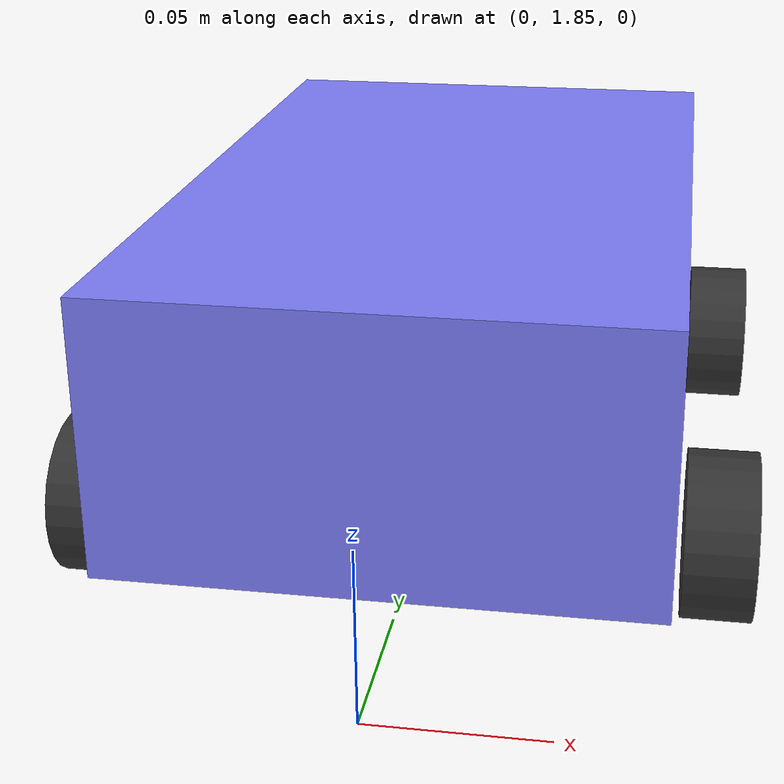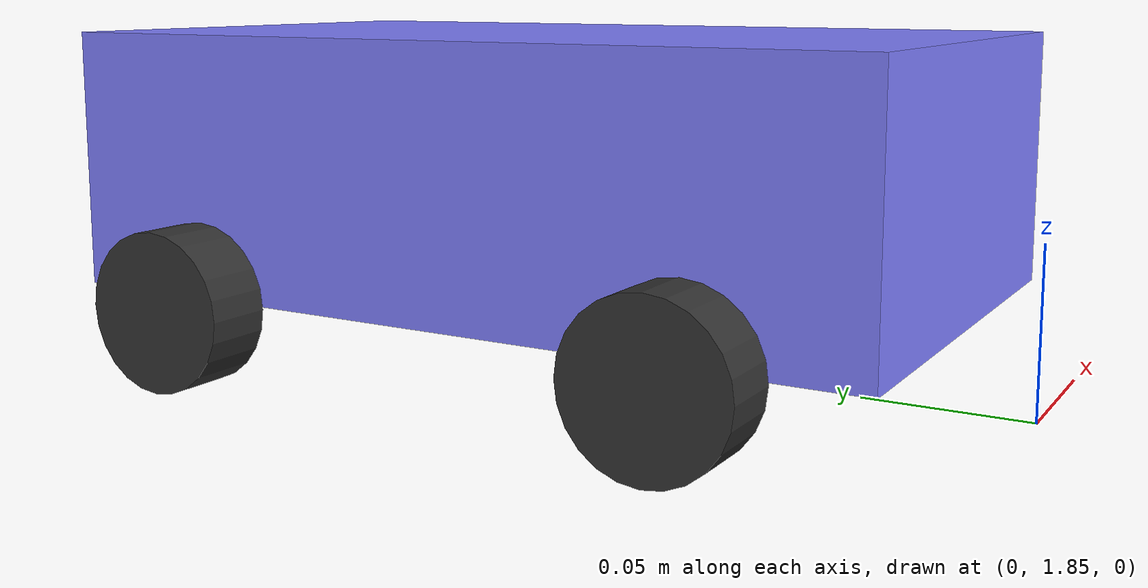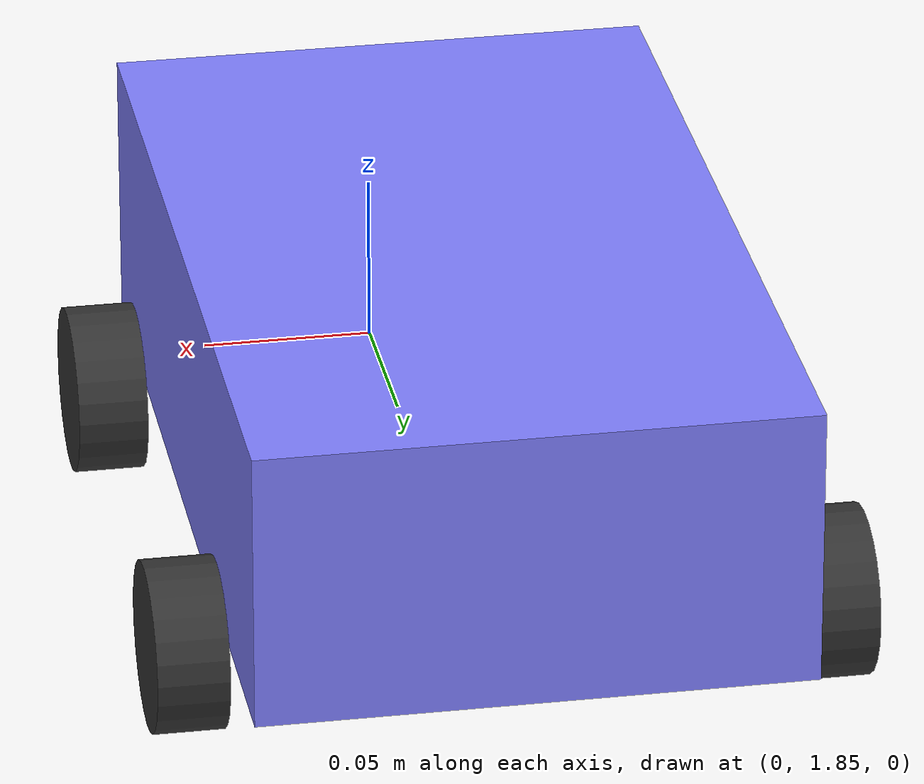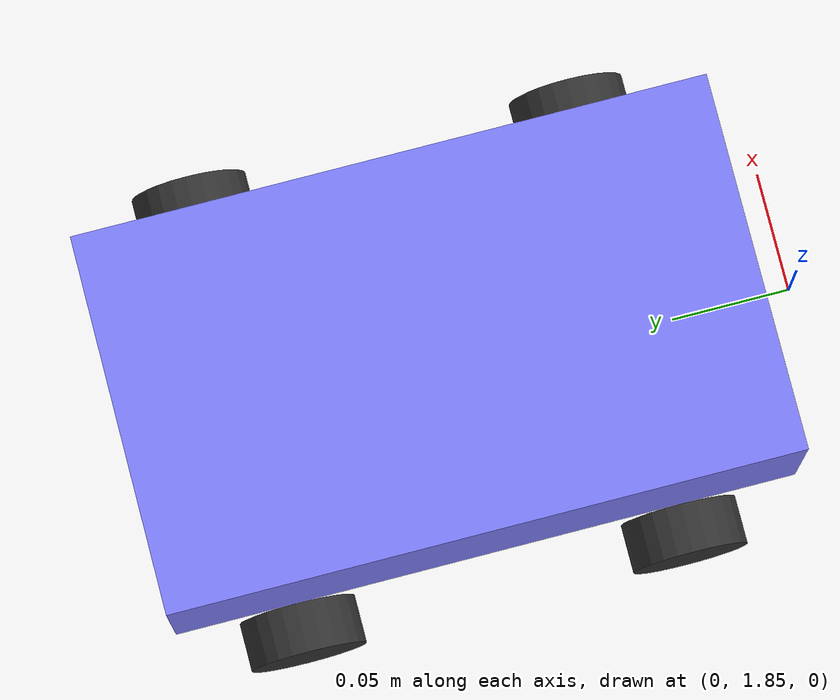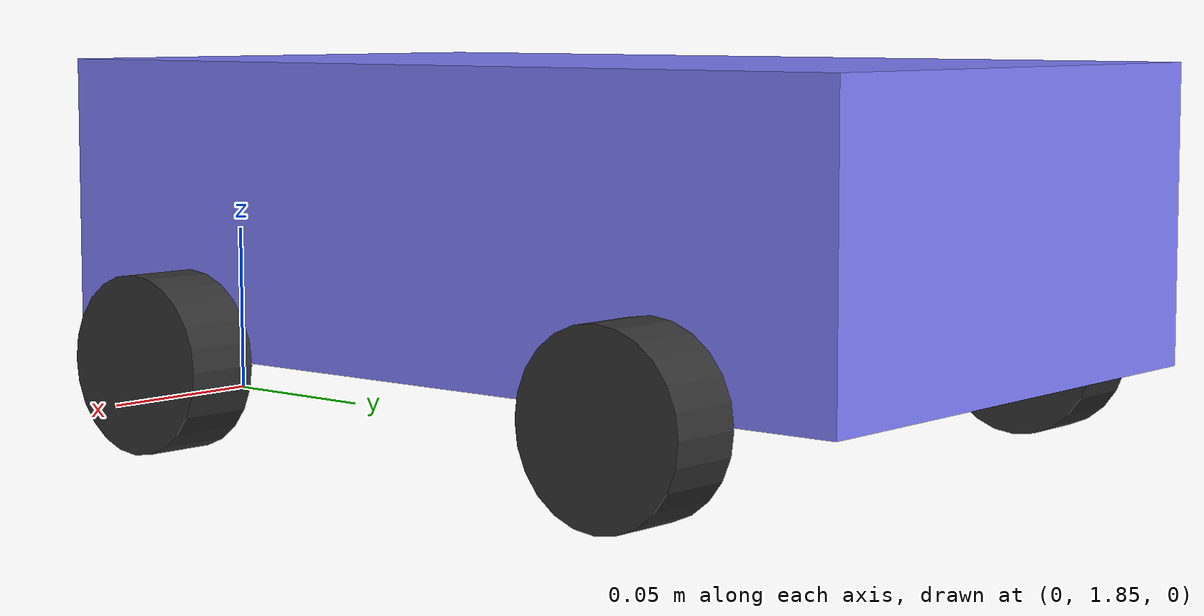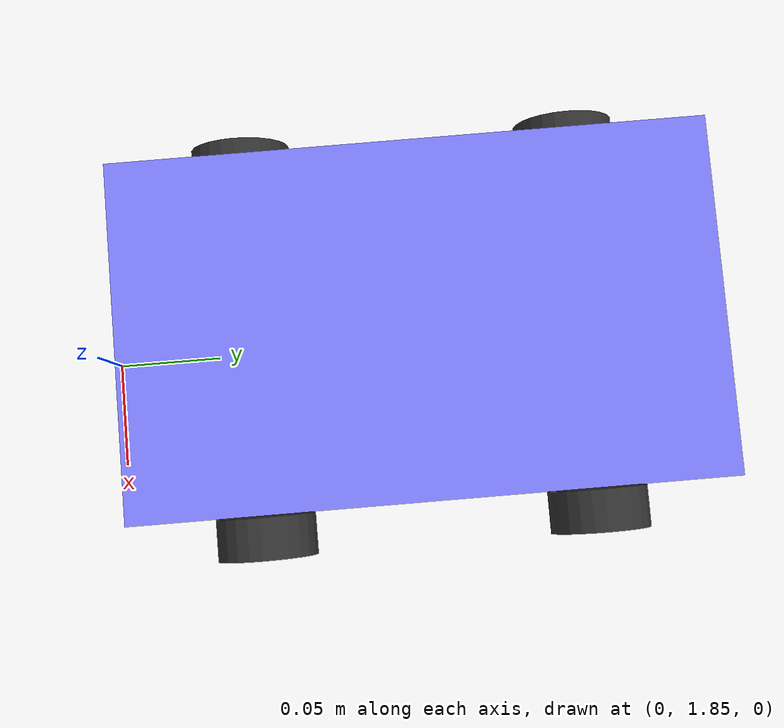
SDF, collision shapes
<?xml version="1.0" ?>
<sdf version="1.10">
  <model name='robot_ROBOT_ID' xmlns:gz="http://gazebosim.org/schema">

    <pose>0 2 0.024 0 0 1.5708</pose>
    <self_collide>false</self_collide>

    <!-- ===== Lidar frame ===== -->
    <frame name="lidar_link" attached_to="chassis">
      <pose>0.08 0 0.06 0 0 0</pose>
    </frame>

    <link name='chassis'>
      <pose>0 0 0.04 0 0 0</pose>
      <gravity>true</gravity>

      <inertial>
        <mass>1.5</mass>
        <inertia>
          <ixx>0.003278125</ixx><ixy>0</ixy><ixz>0</ixz>
          <iyy>0.009380</iyy>   <iyz>0</iyz>
          <izz>0.012153125</izz>
        </inertia>
      </inertial>

      <!-- COLLISION chassis — đã khôi phục -->
      <collision name="collision">
        <geometry>
          <box><size>0.26 0.155 0.08</size></box>
        </geometry>
        <surface>
          <friction>
            <ode>
              <mu>0.6</mu>
              <mu2>0.6</mu2>
            </ode>
          </friction>
          <contact>
            <ode>
              <kp>1e6</kp>
              <kd>100.0</kd>
              <max_vel>0.1</max_vel>
              <min_depth>0.001</min_depth>
            </ode>
          </contact>
        </surface>
      </collision>

      <visual name='visual'>
        <geometry>
          <box><size>0.26 0.155 0.08</size></box>
        </geometry>
        <material>
          <ambient>0.5 0.5 1.0 1</ambient>
          <diffuse>0.5 0.5 1.0 1</diffuse>
          <specular>0.0 0.0 1.0 1</specular>
        </material>
      </visual>

      <!-- ===== 3D block letters HUY ===== -->
      <visual name="txt_H_left">
        <pose>0.036193 0.08029 0.007033 0 0 0</pose>
        <geometry><box><size>0.005170 0.0031 0.028133</size></box></geometry>
        <material><ambient>0 0 0 1</ambient><diffuse>0 0 0 1</diffuse><specular>0.2 0.2 0.2 1</specular></material>
      </visual>
      <visual name="txt_H_right">
        <pose>0.054290 0.08029 0.007033 0 0 0</pose>
        <geometry><box><size>0.005170 0.0031 0.028133</size></box></geometry>
        <material><ambient>0 0 0 1</ambient><diffuse>0 0 0 1</diffuse><specular>0.2 0.2 0.2 1</specular></material>
      </visual>
      <visual name="txt_H_mid">
        <pose>0.045242 0.08029 0.007033 0 0 0</pose>
        <geometry><box><size>0.023267 0.0031 0.005627</size></box></geometry>
        <material><ambient>0 0 0 1</ambient><diffuse>0 0 0 1</diffuse><specular>0.2 0.2 0.2 1</specular></material>
      </visual>
      <visual name="txt_U_left">
        <pose>-0.009048 0.08029 0.007033 0 0 0</pose>
        <geometry><box><size>0.005170 0.0031 0.028133</size></box></geometry>
        <material><ambient>0 0 0 1</ambient><diffuse>0 0 0 1</diffuse><specular>0.2 0.2 0.2 1</specular></material>
      </visual>
      <visual name="txt_U_right">
        <pose>0.009048 0.08029 0.007033 0 0 0</pose>
        <geometry><box><size>0.005170 0.0031 0.028133</size></box></geometry>
        <material><ambient>0 0 0 1</ambient><diffuse>0 0 0 1</diffuse><specular>0.2 0.2 0.2 1</specular></material>
      </visual>
      <visual name="txt_U_bottom">
        <pose>0.00 0.08029 -0.004220 0 0 0</pose>
        <geometry><box><size>0.023267 0.0031 0.005627</size></box></geometry>
        <material><ambient>0 0 0 1</ambient><diffuse>0 0 0 1</diffuse><specular>0.2 0.2 0.2 1</specular></material>
      </visual>
      <visual name="txt_Y_left">
        <pose>-0.054290 0.08029 0.012660 0 -0.7 0</pose>
        <geometry><box><size>0.005170 0.0031 0.019693</size></box></geometry>
        <material><ambient>0 0 0 1</ambient><diffuse>0 0 0 1</diffuse><specular>0.2 0.2 0.2 1</specular></material>
      </visual>
      <visual name="txt_Y_right">
        <pose>-0.036193 0.08029 0.012660 0 0.7 0</pose>
        <geometry><box><size>0.005170 0.0031 0.019693</size></box></geometry>
        <material><ambient>0 0 0 1</ambient><diffuse>0 0 0 1</diffuse><specular>0.2 0.2 0.2 1</specular></material>
      </visual>
      <visual name="txt_Y_tail">
        <pose>-0.045242 0.08029 0.001407 0 0 0</pose>
        <geometry><box><size>0.005170 0.0031 0.016880</size></box></geometry>
        <material><ambient>0 0 0 1</ambient><diffuse>0 0 0 1</diffuse><specular>0.2 0.2 0.2 1</specular></material>
      </visual>

      <!-- ===== LIDAR visual ===== -->
      <visual name="lidar_visual">
        <pose relative_to="lidar_link">0 0 0 0 0 0</pose>
        <geometry>
          <cylinder><radius>0.025</radius><length>0.04</length></cylinder>
        </geometry>
        <material>
          <ambient>0 0 0 1</ambient><diffuse>0 0 0 1</diffuse>
          <specular>0 0 0 1</specular><emissive>0 0 0 1</emissive>
        </material>
      </visual>

      <!-- ===== LIDAR SENSOR (GPU) =====
           36 rays × 10°, range 0.05–3.0m, update 5 Hz.
           Ray-cast vào collision của TƯỜNG maze (chassis không cần collision riêng cho lidar).
      -->
      <sensor name="gpu_lidar" type="gpu_lidar">
        <pose relative_to="lidar_link">0 0 0 0 0 0</pose>
        <topic>/scanROBOT_ID</topic>
        <update_rate>5</update_rate>
        <ray>
          <scan>
            <horizontal>
              <samples>36</samples>
              <resolution>1</resolution>
              <min_angle>0.000000</min_angle>
              <max_angle>6.108652</max_angle>  <!-- 2π × 35/36 = 350° — matches training sim endpoint=False -->
            </horizontal>
            <vertical>
              <samples>1</samples>
              <resolution>0.013</resolution>
              <min_angle>0</min_angle>
              <max_angle>0</max_angle>
            </vertical>
          </scan>
          <range>
            <min>0.05</min>
            <max>3.0</max>  <!-- matches LIDAR_MAX in config.py -->
            <resolution>0.01</resolution>
          </range>
        </ray>
        <always_on>true</always_on>
        <visualize>false</visualize>
      </sensor>
    </link>

    <link name='front_left_wheel'>
      <pose>0.08 0.09 0.0 -1.5707 0 0</pose>
      <gravity>true</gravity>
      <inertial>
        <mass>0.025</mass>
        <inertia>
          <ixx>0.0000072</ixx><ixy>0</ixy><ixz>0</ixz>
          <iyy>0.0000072</iyy><iyz>0</iyz><izz>0.0000144</izz>
        </inertia>
      </inertial>
      <!-- COLLISION bánh — đã khôi phục -->
      <collision name="collision">
        <geometry>
          <cylinder>
            <radius>0.024</radius>
            <length>0.020</length>
          </cylinder>
        </geometry>
        <surface>
          <friction>
            <ode>
              <mu>0.8</mu>
              <mu2>0.3</mu2>
              <fdir1>1 0 0</fdir1>
            </ode>
          </friction>
          <contact>
            <ode>
              <kp>1e6</kp>
              <kd>100.0</kd>
              <min_depth>0.001</min_depth>
            </ode>
          </contact>
        </surface>
      </collision>
      <visual name='visual'>
        <pose>0 0 0 1.5707 0 0</pose>
        <geometry>
          <mesh>
            <uri>https://fuel.gazebosim.org/1.0/OpenRobotics/models/Mecanum lift/tip/files/meshes/mecanum_wheel_left.STL</uri>
            <scale>0.00048 0.00048 0.00048</scale>
          </mesh>
        </geometry>
        <material>
          <ambient>0.2 0.2 0.2 1</ambient><diffuse>0.2 0.2 0.2 1</diffuse>
          <specular>0.2 0.2 0.2 1</specular>
        </material>
      </visual>
    </link>

    <link name='rear_left_wheel'>
      <pose>-0.08 0.09 0.0 -1.5707 0 0</pose>
      <gravity>true</gravity>
      <inertial>
        <mass>0.025</mass>
        <inertia>
          <ixx>0.0000072</ixx><ixy>0</ixy><ixz>0</ixz>
          <iyy>0.0000072</iyy><iyz>0</iyz><izz>0.0000144</izz>
        </inertia>
      </inertial>
      <!-- COLLISION bánh — đã khôi phục -->
      <collision name="collision">
        <geometry>
          <cylinder>
            <radius>0.024</radius>
            <length>0.020</length>
          </cylinder>
        </geometry>
        <surface>
          <friction>
            <ode>
              <mu>0.8</mu>
              <mu2>0.3</mu2>
              <fdir1>1 0 0</fdir1>
            </ode>
          </friction>
          <contact>
            <ode>
              <kp>1e6</kp>
              <kd>100.0</kd>
              <min_depth>0.001</min_depth>
            </ode>
          </contact>
        </surface>
      </collision>
      <visual name='visual'>
        <pose>0 0 0 1.5707 0 0</pose>
        <geometry>
          <mesh>
            <uri>https://fuel.gazebosim.org/1.0/OpenRobotics/models/Mecanum lift/tip/files/meshes/mecanum_wheel_right.STL</uri>
            <scale>0.00048 0.00048 0.00048</scale>
          </mesh>
        </geometry>
        <material>
          <ambient>0.2 0.2 0.2 1</ambient><diffuse>0.2 0.2 0.2 1</diffuse>
          <specular>0.2 0.2 0.2 1</specular>
        </material>
      </visual>
    </link>

    <link name='front_right_wheel'>
      <pose>0.08 -0.09 0.0 -1.5707 0 0</pose>
      <gravity>true</gravity>
      <inertial>
        <mass>0.025</mass>
        <inertia>
          <ixx>0.0000072</ixx><ixy>0</ixy><ixz>0</ixz>
          <iyy>0.0000072</iyy><iyz>0</iyz><izz>0.0000144</izz>
        </inertia>
      </inertial>
      <!-- COLLISION bánh — đã khôi phục -->
      <collision name="collision">
        <geometry>
          <cylinder>
            <radius>0.024</radius>
            <length>0.020</length>
          </cylinder>
        </geometry>
        <surface>
          <friction>
            <ode>
              <mu>0.8</mu>
              <mu2>0.3</mu2>
              <fdir1>1 0 0</fdir1>
            </ode>
          </friction>
          <contact>
            <ode>
              <kp>1e6</kp>
              <kd>100.0</kd>
              <min_depth>0.001</min_depth>
            </ode>
          </contact>
        </surface>
      </collision>
      <visual name='visual'>
        <pose>0 0 0 1.5707 0 0</pose>
        <geometry>
          <mesh>
            <uri>https://fuel.gazebosim.org/1.0/OpenRobotics/models/Mecanum lift/tip/files/meshes/mecanum_wheel_right.STL</uri>
            <scale>0.00048 0.00048 0.00048</scale>
          </mesh>
        </geometry>
        <material>
          <ambient>0.2 0.2 0.2 1</ambient><diffuse>0.2 0.2 0.2 1</diffuse>
          <specular>0.2 0.2 0.2 1</specular>
        </material>
      </visual>
    </link>

    <link name='rear_right_wheel'>
      <pose>-0.08 -0.09 0.0 -1.5707 0 0</pose>
      <gravity>true</gravity>
      <inertial>
        <mass>0.025</mass>
        <inertia>
          <ixx>0.0000072</ixx><ixy>0</ixy><ixz>0</ixz>
          <iyy>0.0000072</iyy><iyz>0</iyz><izz>0.0000144</izz>
        </inertia>
      </inertial>
      <!-- COLLISION bánh — đã khôi phục -->
      <collision name="collision">
        <geometry>
          <cylinder>
            <radius>0.024</radius>
            <length>0.020</length>
          </cylinder>
        </geometry>
        <surface>
          <friction>
            <ode>
              <mu>0.8</mu>
              <mu2>0.3</mu2>
              <fdir1>1 0 0</fdir1>
            </ode>
          </friction>
          <contact>
            <ode>
              <kp>1e6</kp>
              <kd>100.0</kd>
              <min_depth>0.001</min_depth>
            </ode>
          </contact>
        </surface>
      </collision>
      <visual name='visual'>
        <pose>0 0 0 1.5707 0 0</pose>
        <geometry>
          <mesh>
            <uri>https://fuel.gazebosim.org/1.0/OpenRobotics/models/Mecanum lift/tip/files/meshes/mecanum_wheel_left.STL</uri>
            <scale>0.00048 0.00048 0.00048</scale>
          </mesh>
        </geometry>
        <material>
          <ambient>0.2 0.2 0.2 1</ambient><diffuse>0.2 0.2 0.2 1</diffuse>
          <specular>0.2 0.2 0.2 1</specular>
        </material>
      </visual>
    </link>

    <!-- ═══════════════════════════════════════════════════════════
         JOINTS — không đổi
    ═══════════════════════════════════════════════════════════════ -->
    <joint name='front_left_wheel_joint' type='revolute'>
      <parent>chassis</parent><child>front_left_wheel</child>
      <axis><xyz>0 0 1</xyz>
        <limit><lower>-1.79769e+308</lower><upper>1.79769e+308</upper></limit>
      </axis>
    </joint>
    <joint name='front_right_wheel_joint' type='revolute'>
      <parent>chassis</parent><child>front_right_wheel</child>
      <axis><xyz>0 0 1</xyz>
        <limit><lower>-1.79769e+308</lower><upper>1.79769e+308</upper></limit>
      </axis>
    </joint>
    <joint name='rear_left_wheel_joint' type='revolute'>
      <parent>chassis</parent><child>rear_left_wheel</child>
      <axis><xyz>0 0 1</xyz>
        <limit><lower>-1.79769e+308</lower><upper>1.79769e+308</upper></limit>
      </axis>
    </joint>
    <joint name='rear_right_wheel_joint' type='revolute'>
      <parent>chassis</parent><child>rear_right_wheel</child>
      <axis><xyz>0 0 1</xyz>
        <limit><lower>-1.79769e+308</lower><upper>1.79769e+308</upper></limit>
      </axis>
    </joint>

    <!-- ═══════════════════════════════════════════════════════════
         PLUGIN 1 — JointController × 4
    ═══════════════════════════════════════════════════════════════ -->
    <plugin filename="gz-sim-joint-controller-system"
            name="gz::sim::systems::JointController">
      <joint_name>front_left_wheel_joint</joint_name>
      <topic>/wheel_fl_ROBOT_ID</topic>
      <use_force_commands>false</use_force_commands>
    </plugin>

    <plugin filename="gz-sim-joint-controller-system"
            name="gz::sim::systems::JointController">
      <joint_name>front_right_wheel_joint</joint_name>
      <topic>/wheel_fr_ROBOT_ID</topic>
      <use_force_commands>false</use_force_commands>
    </plugin>

    <plugin filename="gz-sim-joint-controller-system"
            name="gz::sim::systems::JointController">
      <joint_name>rear_left_wheel_joint</joint_name>
      <topic>/wheel_rl_ROBOT_ID</topic>
      <use_force_commands>false</use_force_commands>
    </plugin>

    <plugin filename="gz-sim-joint-controller-system"
            name="gz::sim::systems::JointController">
      <joint_name>rear_right_wheel_joint</joint_name>
      <topic>/wheel_rr_ROBOT_ID</topic>
      <use_force_commands>false</use_force_commands>
    </plugin>

    <plugin filename="gz-sim-velocity-control-system"
            name="gz::sim::systems::VelocityControl">
      <topic>/model/robot_ROBOT_ID/cmd_vel</topic>
    </plugin>

    <!-- ═══════════════════════════════════════════════════════════
         PLUGIN 3 — PosePublisher
    ═══════════════════════════════════════════════════════════════ -->
    <plugin filename="gz-sim-pose-publisher-system"
            name="gz::sim::systems::PosePublisher">
      <publish_link_pose>false</publish_link_pose>
      <publish_nested_model_pose>false</publish_nested_model_pose>
      <publish_model_pose>true</publish_model_pose>
      <update_frequency>10</update_frequency>
    </plugin>

  </model>
</sdf>
